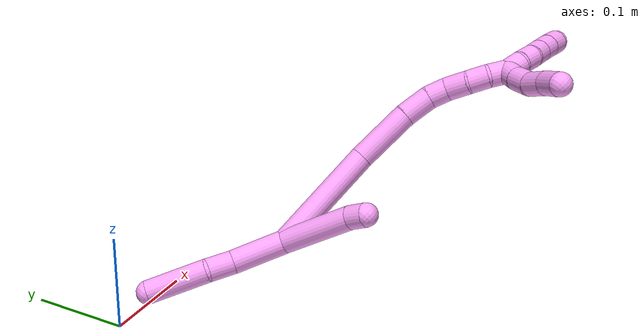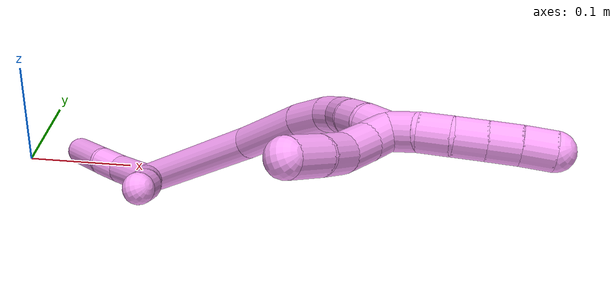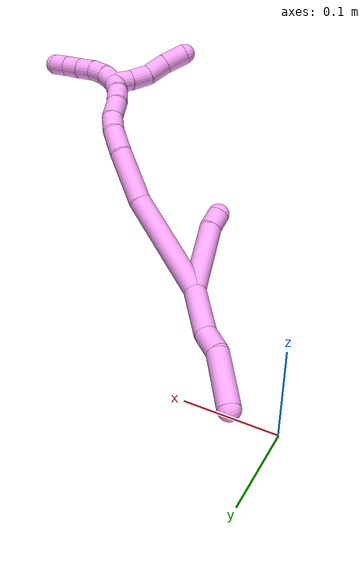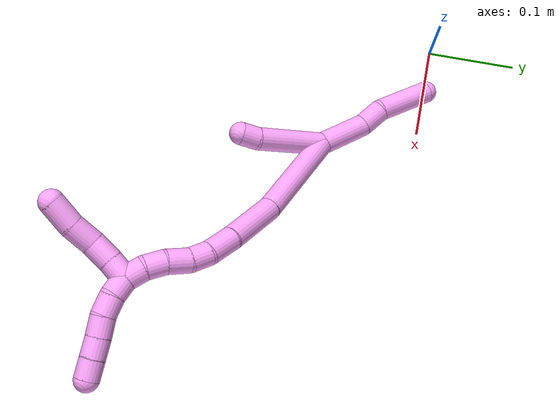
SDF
<sdf version="1.7">
 <world name="default">
  <model name="photoneo_s_sensor">
   <static>1</static>
   <pose>0 0 2 1.57079 1.57079 3.14159</pose>
   <link name="link">
    <inertial><mass>0.1</mass></inertial>
    <sensor name="sensor" type="depth">
     <update_rate>30</update_rate>
     <camera>
      <horizontal_fov>1.22</horizontal_fov>
      <image><width>1920</width><height>1200</height><format>B8G8R8</format></image>
      <clip><near>0.1</near><far>4</far></clip>
      <depth_camera><output>points</output></depth_camera>
     </camera>
     <plugin name="camera_plugin" filename="libgazebo_ros_depth_camera.so">
      <baseline>0.2</baseline>
      <alwaysOn>1</alwaysOn>
      <updateRate>0.0</updateRate>
      <cameraName>camera_ir</cameraName>
      <imageTopicName>/camera/color/image_raw</imageTopicName>
      <cameraInfoTopicName>/camera/color/camera_info</cameraInfoTopicName>
      <depthImageTopicName>/camera/depth/image_raw</depthImageTopicName>
      <depthImageCameraInfoTopicName>/camera/depth/camera_info</depthImageCameraInfoTopicName>
      <pointCloudTopicName>/camera/depth/points</pointCloudTopicName>
      <frameName>fr_optical</frameName>
      <pointCloudCutoff>0.1</pointCloudCutoff>
      <pointCloudCutoffMax>2.0</pointCloudCutoffMax>
      <distortionK1>0</distortionK1>
      <distortionK2>0</distortionK2>
      <distortionK3>0</distortionK3>
      <distortionT1>0</distortionT1>
      <distortionT2>0</distortionT2>
      <CxPrime>0</CxPrime>
      <Cx>0</Cx>
      <Cy>0</Cy>
      <focalLength>0</focalLength>
      <hackBaseline>0</hackBaseline>
     </plugin>
    </sensor>
   </link>
  </model>
  <model name="bin">
   <static>1</static>
   <link name="bottom">
    <collision name="collision-bottom">
     <pose>0 0 -0.01 0 -0 0</pose>
     <geometry><box><size>0.8 0.6 0.02</size></box></geometry>
     <surface>
      <friction><ode><mu>100</mu><mu2>100</mu2></ode></friction>
      <contact><collide_bitmask>65535</collide_bitmask></contact>
     </surface>
    </collision>
   </link>
   <link name="west_wall">
    <collision name="collision-west_wall">
     <pose>-0.41 0 0.1 0 -0 0</pose>
     <geometry><box><size>0.02 0.6 0.2</size></box></geometry>
     <surface>
      <friction><ode><mu>100</mu><mu2>100</mu2></ode></friction>
      <contact><collide_bitmask>65535</collide_bitmask></contact>
     </surface>
    </collision>
   </link>
   <link name="east_wall">
    <collision name="collision-east_wall">
     <pose>0.41 0 0.1 0 -0 0</pose>
     <geometry><box><size>0.02 0.6 0.2</size></box></geometry>
     <surface>
      <friction><ode><mu>100</mu><mu2>100</mu2></ode></friction>
      <contact><collide_bitmask>65535</collide_bitmask></contact>
     </surface>
    </collision>
   </link>
   <link name="south_wall">
    <collision name="collision-south_wall">
     <pose>0 -0.31 0.1 0 -0 0</pose>
     <geometry><box><size>0.8 0.02 0.2</size></box></geometry>
     <surface>
      <friction><ode><mu>100</mu><mu2>100</mu2></ode></friction>
      <contact><collide_bitmask>65535</collide_bitmask></contact>
     </surface>
    </collision>
   </link>
   <link name="north_wall">
    <collision name="collision-north_wall">
     <pose>0 0.31 0.1 0 -0 0</pose>
     <geometry><box><size>0.8 0.02 0.2</size></box></geometry>
     <surface>
      <friction><ode><mu>100</mu><mu2>100</mu2></ode></friction>
      <contact><collide_bitmask>65535</collide_bitmask></contact>
     </surface>
    </collision>
   </link>
  </model>
  <model name="4">
   <static>0</static>
   <link name="4">
    <collision name="collision-cylinder-e_1_2_8">
     <pose>-0.008281 0.010483 -0.025223 -2.74769 -0.294346 1.27795</pose>
     <geometry><cylinder><radius>0.0125</radius><length>0.057085</length></cylinder></geometry>
     <surface>
      <friction><ode><mu>1.16</mu><mu2>1.16</mu2><slip1>0</slip1><slip2>0</slip2></ode></friction>
      <contact><ode><kp>1e+06</kp><kd>1</kd><max_vel>0</max_vel><min_depth>0.001</min_depth></ode></contact>
     </surface>
    </collision>
    <visual name="visual-cylinder-e_1_2_8">
     <pose>-0.008281 0.010483 -0.025223 -2.74769 -0.294346 1.27795</pose>
     <geometry><cylinder><radius>0.0125</radius><length>0.057085</length></cylinder></geometry>
     <material><ambient>1 0.65098 0.996078 1</ambient></material>
    </visual>
    <collision name="collision-cylinder-e_2_8_9">
     <pose>-0.023229 0.022775 -0.062662 -2.99462 -0.495122 2.57472</pose>
     <geometry><cylinder><radius>0.0125</radius><length>0.028068</length></cylinder></geometry>
     <surface>
      <friction><ode><mu>1.16</mu><mu2>1.16</mu2><slip1>0</slip1><slip2>0</slip2></ode></friction>
      <contact><ode><kp>1e+06</kp><kd>1</kd><max_vel>0</max_vel><min_depth>0.001</min_depth></ode></contact>
     </surface>
    </collision>
    <visual name="visual-cylinder-e_2_8_9">
     <pose>-0.023229 0.022775 -0.062662 -2.99462 -0.495122 2.57472</pose>
     <geometry><cylinder><radius>0.0125</radius><length>0.028068</length></cylinder></geometry>
     <material><ambient>1 0.65098 0.996078 1</ambient></material>
    </visual>
    <collision name="collision-cylinder-e_3_9_6">
     <pose>-0.039456 0.037795 -0.102902 -2.70105 -0.299251 1.18514</pose>
     <geometry><cylinder><radius>0.0125</radius><length>0.064847</length></cylinder></geometry>
     <surface>
      <friction><ode><mu>1.16</mu><mu2>1.16</mu2><slip1>0</slip1><slip2>0</slip2></ode></friction>
      <contact><ode><kp>1e+06</kp><kd>1</kd><max_vel>0</max_vel><min_depth>0.001</min_depth></ode></contact>
     </surface>
    </collision>
    <visual name="visual-cylinder-e_3_9_6">
     <pose>-0.039456 0.037795 -0.102902 -2.70105 -0.299251 1.18514</pose>
     <geometry><cylinder><radius>0.0125</radius><length>0.064847</length></cylinder></geometry>
     <material><ambient>1 0.65098 0.996078 1</ambient></material>
    </visual>
    <collision name="collision-cylinder-e_1_2_10">
     <pose>0.002262 -0.028369 0.028083 0.790462 0.056613 0.023623</pose>
     <geometry><cylinder><radius>0.0125</radius><length>0.079965</length></cylinder></geometry>
     <surface>
      <friction><ode><mu>1.16</mu><mu2>1.16</mu2><slip1>0</slip1><slip2>0</slip2></ode></friction>
      <contact><ode><kp>1e+06</kp><kd>1</kd><max_vel>0</max_vel><min_depth>0.001</min_depth></ode></contact>
     </surface>
    </collision>
    <visual name="visual-cylinder-e_1_2_10">
     <pose>0.002262 -0.028369 0.028083 0.790462 0.056613 0.023623</pose>
     <geometry><cylinder><radius>0.0125</radius><length>0.079965</length></cylinder></geometry>
     <material><ambient>1 0.65098 0.996078 1</ambient></material>
    </visual>
    <collision name="collision-cylinder-e_2_10_5">
     <pose>0.005117 -0.065357 0.061238 1.03887 0.059196 0.033856</pose>
     <geometry><cylinder><radius>0.0125</radius><length>0.020035</length></cylinder></geometry>
     <surface>
      <friction><ode><mu>1.16</mu><mu2>1.16</mu2><slip1>0</slip1><slip2>0</slip2></ode></friction>
      <contact><ode><kp>1e+06</kp><kd>1</kd><max_vel>0</max_vel><min_depth>0.001</min_depth></ode></contact>
     </surface>
    </collision>
    <visual name="visual-cylinder-e_2_10_5">
     <pose>0.005117 -0.065357 0.061238 1.03887 0.059196 0.033856</pose>
     <geometry><cylinder><radius>0.0125</radius><length>0.020035</length></cylinder></geometry>
     <material><ambient>1 0.65098 0.996078 1</ambient></material>
    </visual>
    <collision name="collision-cylinder-e_1_2_11">
     <pose>-0.000106 0.000114 0.059831 -0.001901 -0.001776 2e-06</pose>
     <geometry><cylinder><radius>0.0125</radius><length>0.119662</length></cylinder></geometry>
     <surface>
      <friction><ode><mu>1.16</mu><mu2>1.16</mu2><slip1>0</slip1><slip2>0</slip2></ode></friction>
      <contact><ode><kp>1e+06</kp><kd>1</kd><max_vel>0</max_vel><min_depth>0.001</min_depth></ode></contact>
     </surface>
    </collision>
    <visual name="visual-cylinder-e_1_2_11">
     <pose>-0.000106 0.000114 0.059831 -0.001901 -0.001776 2e-06</pose>
     <geometry><cylinder><radius>0.0125</radius><length>0.119662</length></cylinder></geometry>
     <material><ambient>1 0.65098 0.996078 1</ambient></material>
    </visual>
    <collision name="collision-cylinder-e_2_11_12">
     <pose>-0.00113 -0.005024 0.150747 0.167364 -0.029104 -0.002441</pose>
     <geometry><cylinder><radius>0.0125</radius><length>0.063079</length></cylinder></geometry>
     <surface>
      <friction><ode><mu>1.16</mu><mu2>1.16</mu2><slip1>0</slip1><slip2>0</slip2></ode></friction>
      <contact><ode><kp>1e+06</kp><kd>1</kd><max_vel>0</max_vel><min_depth>0.001</min_depth></ode></contact>
     </surface>
    </collision>
    <visual name="visual-cylinder-e_2_11_12">
     <pose>-0.00113 -0.005024 0.150747 0.167364 -0.029104 -0.002441</pose>
     <geometry><cylinder><radius>0.0125</radius><length>0.063079</length></cylinder></geometry>
     <material><ambient>1 0.65098 0.996078 1</ambient></material>
    </visual>
    <collision name="collision-cylinder-e_3_12_13">
     <pose>-0.000861 -0.01403 0.196905 0.244066 0.076249 0.009356</pose>
     <geometry><cylinder><radius>0.0125</radius><length>0.031158</length></cylinder></geometry>
     <surface>
      <friction><ode><mu>1.16</mu><mu2>1.16</mu2><slip1>0</slip1><slip2>0</slip2></ode></friction>
      <contact><ode><kp>1e+06</kp><kd>1</kd><max_vel>0</max_vel><min_depth>0.001</min_depth></ode></contact>
     </surface>
    </collision>
    <visual name="visual-cylinder-e_3_12_13">
     <pose>-0.000861 -0.01403 0.196905 0.244066 0.076249 0.009356</pose>
     <geometry><cylinder><radius>0.0125</radius><length>0.031158</length></cylinder></geometry>
     <material><ambient>1 0.65098 0.996078 1</ambient></material>
    </visual>
    <collision name="collision-cylinder-e_4_13_14">
     <pose>0.002423 -0.022346 0.22109 0.46426 0.202979 0.048138</pose>
     <geometry><cylinder><radius>0.0125</radius><length>0.020807</length></cylinder></geometry>
     <surface>
      <friction><ode><mu>1.16</mu><mu2>1.16</mu2><slip1>0</slip1><slip2>0</slip2></ode></friction>
      <contact><ode><kp>1e+06</kp><kd>1</kd><max_vel>0</max_vel><min_depth>0.001</min_depth></ode></contact>
     </surface>
    </collision>
    <visual name="visual-cylinder-e_4_13_14">
     <pose>0.002423 -0.022346 0.22109 0.46426 0.202979 0.048138</pose>
     <geometry><cylinder><radius>0.0125</radius><length>0.020807</length></cylinder></geometry>
     <material><ambient>1 0.65098 0.996078 1</ambient></material>
    </visual>
    <collision name="collision-cylinder-e_5_14_15">
     <pose>0.006408 -0.035124 0.238871 0.758509 0.156819 0.062608</pose>
     <geometry><cylinder><radius>0.0125</radius><length>0.024183</length></cylinder></geometry>
     <surface>
      <friction><ode><mu>1.16</mu><mu2>1.16</mu2><slip1>0</slip1><slip2>0</slip2></ode></friction>
      <contact><ode><kp>1e+06</kp><kd>1</kd><max_vel>0</max_vel><min_depth>0.001</min_depth></ode></contact>
     </surface>
    </collision>
    <visual name="visual-cylinder-e_5_14_15">
     <pose>0.006408 -0.035124 0.238871 0.758509 0.156819 0.062608</pose>
     <geometry><cylinder><radius>0.0125</radius><length>0.024183</length></cylinder></geometry>
     <material><ambient>1 0.65098 0.996078 1</ambient></material>
    </visual>
    <collision name="collision-cylinder-e_6_15_16">
     <pose>0.011243 -0.048793 0.25605 0.569938 0.283653 0.083607</pose>
     <geometry><cylinder><radius>0.0125</radius><length>0.021057</length></cylinder></geometry>
     <surface>
      <friction><ode><mu>1.16</mu><mu2>1.16</mu2><slip1>0</slip1><slip2>0</slip2></ode></friction>
      <contact><ode><kp>1e+06</kp><kd>1</kd><max_vel>0</max_vel><min_depth>0.001</min_depth></ode></contact>
     </surface>
    </collision>
    <visual name="visual-cylinder-e_6_15_16">
     <pose>0.011243 -0.048793 0.25605 0.569938 0.283653 0.083607</pose>
     <geometry><cylinder><radius>0.0125</radius><length>0.021057</length></cylinder></geometry>
     <material><ambient>1 0.65098 0.996078 1</ambient></material>
    </visual>
    <collision name="collision-cylinder-e_7_16_1">
     <pose>0.018872 -0.057302 0.272884 0.351741 0.485859 0.088023</pose>
     <geometry><cylinder><radius>0.0125</radius><length>0.020055</length></cylinder></geometry>
     <surface>
      <friction><ode><mu>1.16</mu><mu2>1.16</mu2><slip1>0</slip1><slip2>0</slip2></ode></friction>
      <contact><ode><kp>1e+06</kp><kd>1</kd><max_vel>0</max_vel><min_depth>0.001</min_depth></ode></contact>
     </surface>
    </collision>
    <visual name="visual-cylinder-e_7_16_1">
     <pose>0.018872 -0.057302 0.272884 0.351741 0.485859 0.088023</pose>
     <geometry><cylinder><radius>0.0125</radius><length>0.020055</length></cylinder></geometry>
     <material><ambient>1 0.65098 0.996078 1</ambient></material>
    </visual>
    <collision name="collision-cylinder-e_1_1_17">
     <pose>0.02671 -0.059326 0.290641 -0.108821 0.321067 -0.017638</pose>
     <geometry><cylinder><radius>0.0125</radius><length>0.02</length></cylinder></geometry>
     <surface>
      <friction><ode><mu>1.16</mu><mu2>1.16</mu2><slip1>0</slip1><slip2>0</slip2></ode></friction>
      <contact><ode><kp>1e+06</kp><kd>1</kd><max_vel>0</max_vel><min_depth>0.001</min_depth></ode></contact>
     </surface>
    </collision>
    <visual name="visual-cylinder-e_1_1_17">
     <pose>0.02671 -0.059326 0.290641 -0.108821 0.321067 -0.017638</pose>
     <geometry><cylinder><radius>0.0125</radius><length>0.02</length></cylinder></geometry>
     <material><ambient>1 0.65098 0.996078 1</ambient></material>
    </visual>
    <collision name="collision-cylinder-e_2_17_18">
     <pose>0.034224 -0.055173 0.308515 -0.354303 0.450911 -0.082076</pose>
     <geometry><cylinder><radius>0.0125</radius><length>0.02</length></cylinder></geometry>
     <surface>
      <friction><ode><mu>1.16</mu><mu2>1.16</mu2><slip1>0</slip1><slip2>0</slip2></ode></friction>
      <contact><ode><kp>1e+06</kp><kd>1</kd><max_vel>0</max_vel><min_depth>0.001</min_depth></ode></contact>
     </surface>
    </collision>
    <visual name="visual-cylinder-e_2_17_18">
     <pose>0.034224 -0.055173 0.308515 -0.354303 0.450911 -0.082076</pose>
     <geometry><cylinder><radius>0.0125</radius><length>0.02</length></cylinder></geometry>
     <material><ambient>1 0.65098 0.996078 1</ambient></material>
    </visual>
    <collision name="collision-cylinder-e_3_18_19">
     <pose>0.043098 -0.04697 0.324291 -0.605792 0.468603 -0.148908</pose>
     <geometry><cylinder><radius>0.0125</radius><length>0.02</length></cylinder></geometry>
     <surface>
      <friction><ode><mu>1.16</mu><mu2>1.16</mu2><slip1>0</slip1><slip2>0</slip2></ode></friction>
      <contact><ode><kp>1e+06</kp><kd>1</kd><max_vel>0</max_vel><min_depth>0.001</min_depth></ode></contact>
     </surface>
    </collision>
    <visual name="visual-cylinder-e_3_18_19">
     <pose>0.043098 -0.04697 0.324291 -0.605792 0.468603 -0.148908</pose>
     <geometry><cylinder><radius>0.0125</radius><length>0.02</length></cylinder></geometry>
     <material><ambient>1 0.65098 0.996078 1</ambient></material>
    </visual>
    <collision name="collision-cylinder-e_4_19_20">
     <pose>0.052164 -0.037221 0.339209 -0.551797 0.472261 -0.136038</pose>
     <geometry><cylinder><radius>0.0125</radius><length>0.02</length></cylinder></geometry>
     <surface>
      <friction><ode><mu>1.16</mu><mu2>1.16</mu2><slip1>0</slip1><slip2>0</slip2></ode></friction>
      <contact><ode><kp>1e+06</kp><kd>1</kd><max_vel>0</max_vel><min_depth>0.001</min_depth></ode></contact>
     </surface>
    </collision>
    <visual name="visual-cylinder-e_4_19_20">
     <pose>0.052164 -0.037221 0.339209 -0.551797 0.472261 -0.136038</pose>
     <geometry><cylinder><radius>0.0125</radius><length>0.02</length></cylinder></geometry>
     <material><ambient>1 0.65098 0.996078 1</ambient></material>
    </visual>
    <collision name="collision-cylinder-e_5_20_4">
     <pose>0.061614 -0.027896 0.354161 -0.563683 0.51227 -0.151369</pose>
     <geometry><cylinder><radius>0.0125</radius><length>0.02</length></cylinder></geometry>
     <surface>
      <friction><ode><mu>1.16</mu><mu2>1.16</mu2><slip1>0</slip1><slip2>0</slip2></ode></friction>
      <contact><ode><kp>1e+06</kp><kd>1</kd><max_vel>0</max_vel><min_depth>0.001</min_depth></ode></contact>
     </surface>
    </collision>
    <visual name="visual-cylinder-e_5_20_4">
     <pose>0.061614 -0.027896 0.354161 -0.563683 0.51227 -0.151369</pose>
     <geometry><cylinder><radius>0.0125</radius><length>0.02</length></cylinder></geometry>
     <material><ambient>1 0.65098 0.996078 1</ambient></material>
    </visual>
    <collision name="collision-cylinder-e_1_1_21">
     <pose>0.024395 -0.070782 0.279079 1.77229 0.078828 0.096532</pose>
     <geometry><cylinder><radius>0.0125</radius><length>0.021347</length></cylinder></geometry>
     <surface>
      <friction><ode><mu>1.16</mu><mu2>1.16</mu2><slip1>0</slip1><slip2>0</slip2></ode></friction>
      <contact><ode><kp>1e+06</kp><kd>1</kd><max_vel>0</max_vel><min_depth>0.001</min_depth></ode></contact>
     </surface>
    </collision>
    <visual name="visual-cylinder-e_1_1_21">
     <pose>0.024395 -0.070782 0.279079 1.77229 0.078828 0.096532</pose>
     <geometry><cylinder><radius>0.0125</radius><length>0.021347</length></cylinder></geometry>
     <material><ambient>1 0.65098 0.996078 1</ambient></material>
    </visual>
    <collision name="collision-cylinder-e_2_21_22">
     <pose>0.025666 -0.093214 0.275909 1.65721 0.035696 0.038922</pose>
     <geometry><cylinder><radius>0.0125</radius><length>0.024121</length></cylinder></geometry>
     <surface>
      <friction><ode><mu>1.16</mu><mu2>1.16</mu2><slip1>0</slip1><slip2>0</slip2></ode></friction>
      <contact><ode><kp>1e+06</kp><kd>1</kd><max_vel>0</max_vel><min_depth>0.001</min_depth></ode></contact>
     </surface>
    </collision>
    <visual name="visual-cylinder-e_2_21_22">
     <pose>0.025666 -0.093214 0.275909 1.65721 0.035696 0.038922</pose>
     <geometry><cylinder><radius>0.0125</radius><length>0.024121</length></cylinder></geometry>
     <material><ambient>1 0.65098 0.996078 1</ambient></material>
    </visual>
    <collision name="collision-cylinder-e_3_22_23">
     <pose>0.024357 -0.118038 0.276589 1.4374 -0.133736 -0.117029</pose>
     <geometry><cylinder><radius>0.0125</radius><length>0.026095</length></cylinder></geometry>
     <surface>
      <friction><ode><mu>1.16</mu><mu2>1.16</mu2><slip1>0</slip1><slip2>0</slip2></ode></friction>
      <contact><ode><kp>1e+06</kp><kd>1</kd><max_vel>0</max_vel><min_depth>0.001</min_depth></ode></contact>
     </surface>
    </collision>
    <visual name="visual-cylinder-e_3_22_23">
     <pose>0.024357 -0.118038 0.276589 1.4374 -0.133736 -0.117029</pose>
     <geometry><cylinder><radius>0.0125</radius><length>0.026095</length></cylinder></geometry>
     <material><ambient>1 0.65098 0.996078 1</ambient></material>
    </visual>
    <collision name="collision-cylinder-e_4_23_3">
     <pose>0.019921 -0.144806 0.277807 1.60672 -0.190743 -0.197677</pose>
     <geometry><cylinder><radius>0.0125</radius><length>0.028437</length></cylinder></geometry>
     <surface>
      <friction><ode><mu>1.16</mu><mu2>1.16</mu2><slip1>0</slip1><slip2>0</slip2></ode></friction>
      <contact><ode><kp>1e+06</kp><kd>1</kd><max_vel>0</max_vel><min_depth>0.001</min_depth></ode></contact>
     </surface>
    </collision>
    <visual name="visual-cylinder-e_4_23_3">
     <pose>0.019921 -0.144806 0.277807 1.60672 -0.190743 -0.197677</pose>
     <geometry><cylinder><radius>0.0125</radius><length>0.028437</length></cylinder></geometry>
     <material><ambient>1 0.65098 0.996078 1</ambient></material>
    </visual>
    <collision name="collision-sphere-3">
     <pose>0.017226 -0.158758 0.277306 0 -0 0</pose>
     <geometry><sphere><radius>0.0125</radius></sphere></geometry>
     <surface>
      <friction><ode><mu>1.16</mu><mu2>1.16</mu2><slip1>0</slip1><slip2>0</slip2></ode></friction>
      <contact><ode><kp>1e+06</kp><kd>1</kd><max_vel>0</max_vel><min_depth>0.001</min_depth></ode></contact>
     </surface>
    </collision>
    <visual name="visual-sphere-3">
     <pose>0.017226 -0.158758 0.277306 0 -0 0</pose>
     <geometry><sphere><radius>0.0125</radius></sphere></geometry>
     <material><ambient>1 0.65098 0.996078 1</ambient></material>
    </visual>
    <collision name="collision-sphere-23">
     <pose>0.022617 -0.130854 0.278309 0 -0 0</pose>
     <geometry><sphere><radius>0.0125</radius></sphere></geometry>
     <surface>
      <friction><ode><mu>1.16</mu><mu2>1.16</mu2><slip1>0</slip1><slip2>0</slip2></ode></friction>
      <contact><ode><kp>1e+06</kp><kd>1</kd><max_vel>0</max_vel><min_depth>0.001</min_depth></ode></contact>
     </surface>
    </collision>
    <visual name="visual-sphere-23">
     <pose>0.022617 -0.130854 0.278309 0 -0 0</pose>
     <geometry><sphere><radius>0.0125</radius></sphere></geometry>
     <material><ambient>1 0.65098 0.996078 1</ambient></material>
    </visual>
    <collision name="collision-sphere-22">
     <pose>0.026096 -0.105222 0.274869 0 -0 0</pose>
     <geometry><sphere><radius>0.0125</radius></sphere></geometry>
     <surface>
      <friction><ode><mu>1.16</mu><mu2>1.16</mu2><slip1>0</slip1><slip2>0</slip2></ode></friction>
      <contact><ode><kp>1e+06</kp><kd>1</kd><max_vel>0</max_vel><min_depth>0.001</min_depth></ode></contact>
     </surface>
    </collision>
    <visual name="visual-sphere-22">
     <pose>0.026096 -0.105222 0.274869 0 -0 0</pose>
     <geometry><sphere><radius>0.0125</radius></sphere></geometry>
     <material><ambient>1 0.65098 0.996078 1</ambient></material>
    </visual>
    <collision name="collision-sphere-21">
     <pose>0.025236 -0.081207 0.276949 0 -0 0</pose>
     <geometry><sphere><radius>0.0125</radius></sphere></geometry>
     <surface>
      <friction><ode><mu>1.16</mu><mu2>1.16</mu2><slip1>0</slip1><slip2>0</slip2></ode></friction>
      <contact><ode><kp>1e+06</kp><kd>1</kd><max_vel>0</max_vel><min_depth>0.001</min_depth></ode></contact>
     </surface>
    </collision>
    <visual name="visual-sphere-21">
     <pose>0.025236 -0.081207 0.276949 0 -0 0</pose>
     <geometry><sphere><radius>0.0125</radius></sphere></geometry>
     <material><ambient>1 0.65098 0.996078 1</ambient></material>
    </visual>
    <collision name="collision-sphere-4">
     <pose>0.066516 -0.023238 0.361528 0 -0 0</pose>
     <geometry><sphere><radius>0.0125</radius></sphere></geometry>
     <surface>
      <friction><ode><mu>1.16</mu><mu2>1.16</mu2><slip1>0</slip1><slip2>0</slip2></ode></friction>
      <contact><ode><kp>1e+06</kp><kd>1</kd><max_vel>0</max_vel><min_depth>0.001</min_depth></ode></contact>
     </surface>
    </collision>
    <visual name="visual-sphere-4">
     <pose>0.066516 -0.023238 0.361528 0 -0 0</pose>
     <geometry><sphere><radius>0.0125</radius></sphere></geometry>
     <material><ambient>1 0.65098 0.996078 1</ambient></material>
    </visual>
    <collision name="collision-sphere-20">
     <pose>0.056713 -0.032553 0.346793 0 -0 0</pose>
     <geometry><sphere><radius>0.0125</radius></sphere></geometry>
     <surface>
      <friction><ode><mu>1.16</mu><mu2>1.16</mu2><slip1>0</slip1><slip2>0</slip2></ode></friction>
      <contact><ode><kp>1e+06</kp><kd>1</kd><max_vel>0</max_vel><min_depth>0.001</min_depth></ode></contact>
     </surface>
    </collision>
    <visual name="visual-sphere-20">
     <pose>0.056713 -0.032553 0.346793 0 -0 0</pose>
     <geometry><sphere><radius>0.0125</radius></sphere></geometry>
     <material><ambient>1 0.65098 0.996078 1</ambient></material>
    </visual>
    <collision name="collision-sphere-5">
     <pose>0.00571 -0.073975 0.06631 0 -0 0</pose>
     <geometry><sphere><radius>0.0125</radius></sphere></geometry>
     <surface>
      <friction><ode><mu>1.16</mu><mu2>1.16</mu2><slip1>0</slip1><slip2>0</slip2></ode></friction>
      <contact><ode><kp>1e+06</kp><kd>1</kd><max_vel>0</max_vel><min_depth>0.001</min_depth></ode></contact>
     </surface>
    </collision>
    <visual name="visual-sphere-5">
     <pose>0.00571 -0.073975 0.06631 0 -0 0</pose>
     <geometry><sphere><radius>0.0125</radius></sphere></geometry>
     <material><ambient>1 0.65098 0.996078 1</ambient></material>
    </visual>
    <collision name="collision-sphere-10">
     <pose>0.004525 -0.056738 0.056166 0 -0 0</pose>
     <geometry><sphere><radius>0.0125</radius></sphere></geometry>
     <surface>
      <friction><ode><mu>1.16</mu><mu2>1.16</mu2><slip1>0</slip1><slip2>0</slip2></ode></friction>
      <contact><ode><kp>1e+06</kp><kd>1</kd><max_vel>0</max_vel><min_depth>0.001</min_depth></ode></contact>
     </surface>
    </collision>
    <visual name="visual-sphere-10">
     <pose>0.004525 -0.056738 0.056166 0 -0 0</pose>
     <geometry><sphere><radius>0.0125</radius></sphere></geometry>
     <material><ambient>1 0.65098 0.996078 1</ambient></material>
    </visual>
    <collision name="collision-sphere-6">
     <pose>-0.049014 0.051007 -0.130926 0 -0 0</pose>
     <geometry><sphere><radius>0.0125</radius></sphere></geometry>
     <surface>
      <friction><ode><mu>1.16</mu><mu2>1.16</mu2><slip1>0</slip1><slip2>0</slip2></ode></friction>
      <contact><ode><kp>1e+06</kp><kd>1</kd><max_vel>0</max_vel><min_depth>0.001</min_depth></ode></contact>
     </surface>
    </collision>
    <visual name="visual-sphere-6">
     <pose>-0.049014 0.051007 -0.130926 0 -0 0</pose>
     <geometry><sphere><radius>0.0125</radius></sphere></geometry>
     <material><ambient>1 0.65098 0.996078 1</ambient></material>
    </visual>
    <collision name="collision-sphere-9">
     <pose>-0.029897 0.024583 -0.074877 0 -0 0</pose>
     <geometry><sphere><radius>0.0125</radius></sphere></geometry>
     <surface>
      <friction><ode><mu>1.16</mu><mu2>1.16</mu2><slip1>0</slip1><slip2>0</slip2></ode></friction>
      <contact><ode><kp>1e+06</kp><kd>1</kd><max_vel>0</max_vel><min_depth>0.001</min_depth></ode></contact>
     </surface>
    </collision>
    <visual name="visual-sphere-9">
     <pose>-0.029897 0.024583 -0.074877 0 -0 0</pose>
     <geometry><sphere><radius>0.0125</radius></sphere></geometry>
     <material><ambient>1 0.65098 0.996078 1</ambient></material>
    </visual>
    <collision name="collision-sphere-2">
     <geometry><sphere><radius>0.0125</radius></sphere></geometry>
     <surface>
      <friction><ode><mu>1.16</mu><mu2>1.16</mu2><slip1>0</slip1><slip2>0</slip2></ode></friction>
      <contact><ode><kp>1e+06</kp><kd>1</kd><max_vel>0</max_vel><min_depth>0.001</min_depth></ode></contact>
     </surface>
    </collision>
    <visual name="visual-sphere-2">
     <geometry><sphere><radius>0.0125</radius></sphere></geometry>
     <material><ambient>1 0.65098 0.996078 1</ambient></material>
    </visual>
    <collision name="collision-sphere-19">
     <pose>0.047615 -0.04189 0.331625 0 -0 0</pose>
     <geometry><sphere><radius>0.0125</radius></sphere></geometry>
     <surface>
      <friction><ode><mu>1.16</mu><mu2>1.16</mu2><slip1>0</slip1><slip2>0</slip2></ode></friction>
      <contact><ode><kp>1e+06</kp><kd>1</kd><max_vel>0</max_vel><min_depth>0.001</min_depth></ode></contact>
     </surface>
    </collision>
    <visual name="visual-sphere-19">
     <pose>0.047615 -0.04189 0.331625 0 -0 0</pose>
     <geometry><sphere><radius>0.0125</radius></sphere></geometry>
     <material><ambient>1 0.65098 0.996078 1</ambient></material>
    </visual>
    <collision name="collision-sphere-8">
     <pose>-0.016561 0.020967 -0.050446 0 -0 0</pose>
     <geometry><sphere><radius>0.0125</radius></sphere></geometry>
     <surface>
      <friction><ode><mu>1.16</mu><mu2>1.16</mu2><slip1>0</slip1><slip2>0</slip2></ode></friction>
      <contact><ode><kp>1e+06</kp><kd>1</kd><max_vel>0</max_vel><min_depth>0.001</min_depth></ode></contact>
     </surface>
    </collision>
    <visual name="visual-sphere-8">
     <pose>-0.016561 0.020967 -0.050446 0 -0 0</pose>
     <geometry><sphere><radius>0.0125</radius></sphere></geometry>
     <material><ambient>1 0.65098 0.996078 1</ambient></material>
    </visual>
    <collision name="collision-sphere-11">
     <pose>-0.000212 0.000227 0.119661 0 -0 0</pose>
     <geometry><sphere><radius>0.0125</radius></sphere></geometry>
     <surface>
      <friction><ode><mu>1.16</mu><mu2>1.16</mu2><slip1>0</slip1><slip2>0</slip2></ode></friction>
      <contact><ode><kp>1e+06</kp><kd>1</kd><max_vel>0</max_vel><min_depth>0.001</min_depth></ode></contact>
     </surface>
    </collision>
    <visual name="visual-sphere-11">
     <pose>-0.000212 0.000227 0.119661 0 -0 0</pose>
     <geometry><sphere><radius>0.0125</radius></sphere></geometry>
     <material><ambient>1 0.65098 0.996078 1</ambient></material>
    </visual>
    <collision name="collision-sphere-12">
     <pose>-0.002048 -0.010276 0.181832 0 -0 0</pose>
     <geometry><sphere><radius>0.0125</radius></sphere></geometry>
     <surface>
      <friction><ode><mu>1.16</mu><mu2>1.16</mu2><slip1>0</slip1><slip2>0</slip2></ode></friction>
      <contact><ode><kp>1e+06</kp><kd>1</kd><max_vel>0</max_vel><min_depth>0.001</min_depth></ode></contact>
     </surface>
    </collision>
    <visual name="visual-sphere-12">
     <pose>-0.002048 -0.010276 0.181832 0 -0 0</pose>
     <geometry><sphere><radius>0.0125</radius></sphere></geometry>
     <material><ambient>1 0.65098 0.996078 1</ambient></material>
    </visual>
    <collision name="collision-sphere-13">
     <pose>0.000325 -0.017783 0.211979 0 -0 0</pose>
     <geometry><sphere><radius>0.0125</radius></sphere></geometry>
     <surface>
      <friction><ode><mu>1.16</mu><mu2>1.16</mu2><slip1>0</slip1><slip2>0</slip2></ode></friction>
      <contact><ode><kp>1e+06</kp><kd>1</kd><max_vel>0</max_vel><min_depth>0.001</min_depth></ode></contact>
     </surface>
    </collision>
    <visual name="visual-sphere-13">
     <pose>0.000325 -0.017783 0.211979 0 -0 0</pose>
     <geometry><sphere><radius>0.0125</radius></sphere></geometry>
     <material><ambient>1 0.65098 0.996078 1</ambient></material>
    </visual>
    <collision name="collision-sphere-14">
     <pose>0.00452 -0.026909 0.230202 0 -0 0</pose>
     <geometry><sphere><radius>0.0125</radius></sphere></geometry>
     <surface>
      <friction><ode><mu>1.16</mu><mu2>1.16</mu2><slip1>0</slip1><slip2>0</slip2></ode></friction>
      <contact><ode><kp>1e+06</kp><kd>1</kd><max_vel>0</max_vel><min_depth>0.001</min_depth></ode></contact>
     </surface>
    </collision>
    <visual name="visual-sphere-14">
     <pose>0.00452 -0.026909 0.230202 0 -0 0</pose>
     <geometry><sphere><radius>0.0125</radius></sphere></geometry>
     <material><ambient>1 0.65098 0.996078 1</ambient></material>
    </visual>
    <collision name="collision-sphere-15">
     <pose>0.008297 -0.043339 0.24754 0 -0 0</pose>
     <geometry><sphere><radius>0.0125</radius></sphere></geometry>
     <surface>
      <friction><ode><mu>1.16</mu><mu2>1.16</mu2><slip1>0</slip1><slip2>0</slip2></ode></friction>
      <contact><ode><kp>1e+06</kp><kd>1</kd><max_vel>0</max_vel><min_depth>0.001</min_depth></ode></contact>
     </surface>
    </collision>
    <visual name="visual-sphere-15">
     <pose>0.008297 -0.043339 0.24754 0 -0 0</pose>
     <geometry><sphere><radius>0.0125</radius></sphere></geometry>
     <material><ambient>1 0.65098 0.996078 1</ambient></material>
    </visual>
    <collision name="collision-sphere-16">
     <pose>0.01419 -0.054247 0.26456 0 -0 0</pose>
     <geometry><sphere><radius>0.0125</radius></sphere></geometry>
     <surface>
      <friction><ode><mu>1.16</mu><mu2>1.16</mu2><slip1>0</slip1><slip2>0</slip2></ode></friction>
      <contact><ode><kp>1e+06</kp><kd>1</kd><max_vel>0</max_vel><min_depth>0.001</min_depth></ode></contact>
     </surface>
    </collision>
    <visual name="visual-sphere-16">
     <pose>0.01419 -0.054247 0.26456 0 -0 0</pose>
     <geometry><sphere><radius>0.0125</radius></sphere></geometry>
     <material><ambient>1 0.65098 0.996078 1</ambient></material>
    </visual>
    <collision name="collision-sphere-1">
     <pose>0.023555 -0.060357 0.281208 0 -0 0</pose>
     <geometry><sphere><radius>0.0125</radius></sphere></geometry>
     <surface>
      <friction><ode><mu>1.16</mu><mu2>1.16</mu2><slip1>0</slip1><slip2>0</slip2></ode></friction>
      <contact><ode><kp>1e+06</kp><kd>1</kd><max_vel>0</max_vel><min_depth>0.001</min_depth></ode></contact>
     </surface>
    </collision>
    <visual name="visual-sphere-1">
     <pose>0.023555 -0.060357 0.281208 0 -0 0</pose>
     <geometry><sphere><radius>0.0125</radius></sphere></geometry>
     <material><ambient>1 0.65098 0.996078 1</ambient></material>
    </visual>
    <collision name="collision-sphere-18">
     <pose>0.038582 -0.05205 0.316957 0 -0 0</pose>
     <geometry><sphere><radius>0.0125</radius></sphere></geometry>
     <surface>
      <friction><ode><mu>1.16</mu><mu2>1.16</mu2><slip1>0</slip1><slip2>0</slip2></ode></friction>
      <contact><ode><kp>1e+06</kp><kd>1</kd><max_vel>0</max_vel><min_depth>0.001</min_depth></ode></contact>
     </surface>
    </collision>
    <visual name="visual-sphere-18">
     <pose>0.038582 -0.05205 0.316957 0 -0 0</pose>
     <geometry><sphere><radius>0.0125</radius></sphere></geometry>
     <material><ambient>1 0.65098 0.996078 1</ambient></material>
    </visual>
    <collision name="collision-sphere-17">
     <pose>0.029866 -0.058295 0.300074 0 -0 0</pose>
     <geometry><sphere><radius>0.0125</radius></sphere></geometry>
     <surface>
      <friction><ode><mu>1.16</mu><mu2>1.16</mu2><slip1>0</slip1><slip2>0</slip2></ode></friction>
      <contact><ode><kp>1e+06</kp><kd>1</kd><max_vel>0</max_vel><min_depth>0.001</min_depth></ode></contact>
     </surface>
    </collision>
    <visual name="visual-sphere-17">
     <pose>0.029866 -0.058295 0.300074 0 -0 0</pose>
     <geometry><sphere><radius>0.0125</radius></sphere></geometry>
     <material><ambient>1 0.65098 0.996078 1</ambient></material>
    </visual>
    <inertial>
     <pose>0.005344 -0.026147 0.130283 0 -0 0</pose>
     <mass>0.75</mass>
     <inertia>
      <ixx>0.000297</ixx>
      <ixy>0</ixy>
      <ixz>0</ixz>
      <iyy>0.000242</iyy>
      <iyz>0</iyz>
      <izz>6.2e-05</izz>
     </inertia>
    </inertial>
   </link>
   <pose>0.142452 -0.107005 0.056701 -0.359802 0.929393 -0.85876</pose>
  </model>
 </world>
</sdf>
